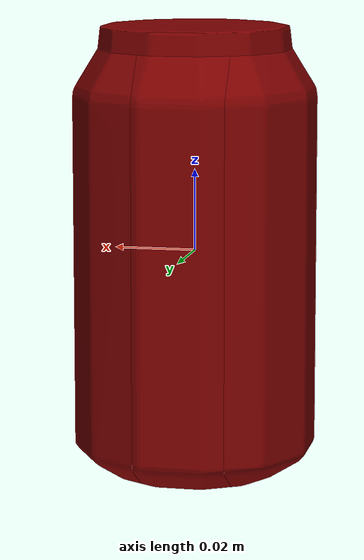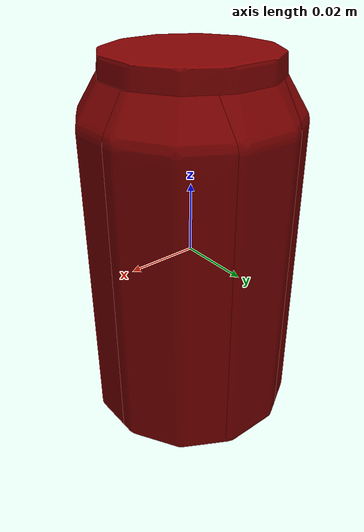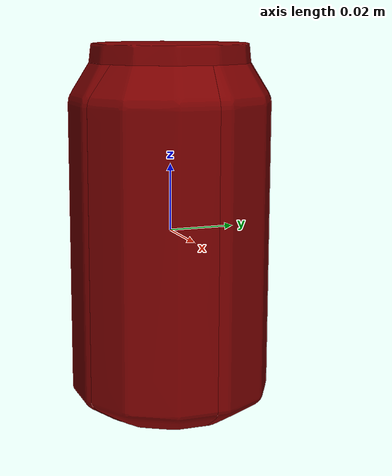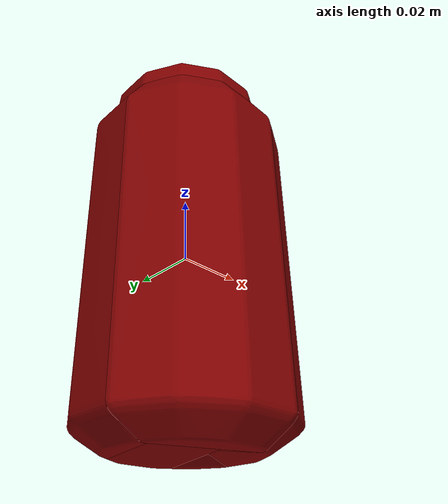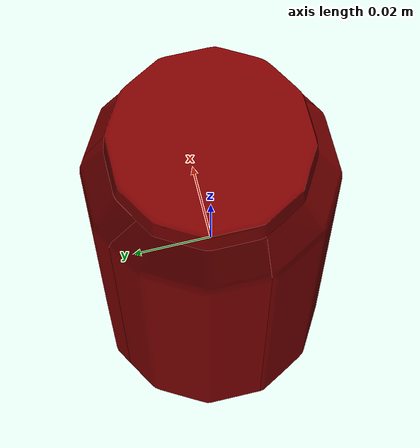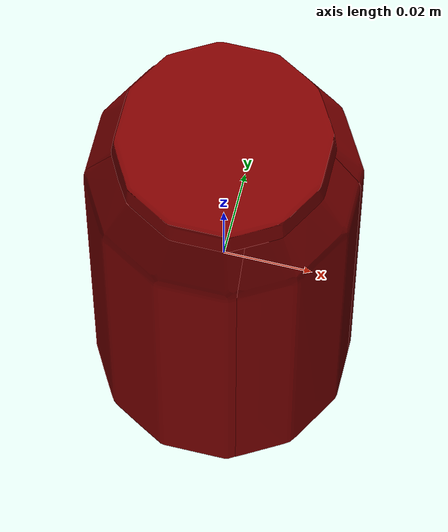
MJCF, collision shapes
<mujoco model="can_29">
  <asset>
    <mesh file="visual/model_normalized_0.obj" name="model_normalized_0_vis" scale="0.11 0.11 0.11" refquat="0.7071067811865472 0.0 0.0 -0.7071067811865476"/>
    <mesh file="visual/model_normalized_1.obj" name="model_normalized_1_vis" scale="0.11 0.11 0.11" refquat="0.7071067811865472 0.0 0.0 -0.7071067811865476"/>
    <mesh file="visual/model_normalized_2.obj" name="model_normalized_2_vis" scale="0.11 0.11 0.11" refquat="0.7071067811865472 0.0 0.0 -0.7071067811865476"/>
    <mesh file="visual/model_normalized_3.obj" name="model_normalized_3_vis" scale="0.11 0.11 0.11" refquat="0.7071067811865472 0.0 0.0 -0.7071067811865476"/>
    <mesh file="visual/model_normalized_4.obj" name="model_normalized_4_vis" scale="0.11 0.11 0.11" refquat="0.7071067811865472 0.0 0.0 -0.7071067811865476"/>
    <texture type="2d" name="image0" file="visual/image0.png"/>
    <texture type="2d" name="image2" file="visual/image2.png"/>
    <material name="858A-CL2" texture="image0" specular="0.5" shininess="0.15999998099999999"/>
    <material name="Material_3K" texture="image0" specular="0.5" shininess="0.15999998099999999"/>
    <material name="drops" texture="image0" specular="0.5" shininess="0.15999998099999999"/>
    <material name="metal.002" texture="image0" specular="0.5" shininess="0.25"/>
    <material name="metal_pepsi" texture="image2" specular="0.5" shininess="0.25"/>
    <mesh file="collision/collision_mesh_collision_0.obj" name="can_collision_mesh_0" scale="0.11 0.11 0.11" refquat="0.7071067811865472 0.0 0.0 -0.7071067811865476"/>
    <mesh file="collision/collision_mesh_collision_1.obj" name="can_collision_mesh_1" scale="0.11 0.11 0.11" refquat="0.7071067811865472 0.0 0.0 -0.7071067811865476"/>
    <mesh file="collision/collision_mesh_collision_2.obj" name="can_collision_mesh_2" scale="0.11 0.11 0.11" refquat="0.7071067811865472 0.0 0.0 -0.7071067811865476"/>
    <mesh file="collision/collision_mesh_collision_3.obj" name="can_collision_mesh_3" scale="0.11 0.11 0.11" refquat="0.7071067811865472 0.0 0.0 -0.7071067811865476"/>
    <mesh file="collision/collision_mesh_collision_4.obj" name="can_collision_mesh_4" scale="0.11 0.11 0.11" refquat="0.7071067811865472 0.0 0.0 -0.7071067811865476"/>
    <mesh file="collision/collision_mesh_collision_5.obj" name="can_collision_mesh_5" scale="0.11 0.11 0.11" refquat="0.7071067811865472 0.0 0.0 -0.7071067811865476"/>
  </asset>
  <default>
    <default class="region">
      <geom group="1" conaffinity="0" contype="0" rgba="0 1 0 0"/>
    </default>
    <default class="collision">
      <geom group="0" rgba="0.5 0 0 0.5" density="1000.0"/>
    </default>
  </default>
  <worldbody>
    <body>
      <body name="object">
        <geom solimp="0.998 0.998 0.001" solref="0.001 1" density="100" friction="0.95 0.3 0.1" type="mesh" mesh="model_normalized_0_vis" conaffinity="0" contype="0" group="1" material="metal_pepsi"/>
        <geom solimp="0.998 0.998 0.001" solref="0.001 1" density="100" friction="0.95 0.3 0.1" type="mesh" mesh="model_normalized_1_vis" conaffinity="0" contype="0" group="1" material="metal.002"/>
        <geom solimp="0.998 0.998 0.001" solref="0.001 1" density="100" friction="0.95 0.3 0.1" type="mesh" mesh="model_normalized_2_vis" conaffinity="0" contype="0" group="1" material="drops"/>
        <geom solimp="0.998 0.998 0.001" solref="0.001 1" density="100" friction="0.95 0.3 0.1" type="mesh" mesh="model_normalized_3_vis" conaffinity="0" contype="0" group="1" material="858A-CL2"/>
        <geom solimp="0.998 0.998 0.001" solref="0.001 1" density="100" friction="0.95 0.3 0.1" type="mesh" mesh="model_normalized_4_vis" conaffinity="0" contype="0" group="1" material="Material_3K"/>
        <geom class="region" name="reg_bbox" type="box" pos="-2.6838899999999944e-05 -7.5812000000000105e-06 -2.94189499999975e-05" size="0.0290639668 0.029044548499999996 0.05543297265"/>
        <geom mesh="can_collision_mesh_0" type="mesh" class="collision"/>
        <geom mesh="can_collision_mesh_1" type="mesh" class="collision"/>
        <geom mesh="can_collision_mesh_2" type="mesh" class="collision"/>
        <geom mesh="can_collision_mesh_3" type="mesh" class="collision"/>
        <geom mesh="can_collision_mesh_4" type="mesh" class="collision"/>
        <geom mesh="can_collision_mesh_5" type="mesh" class="collision"/>
      </body>
    </body>
  </worldbody>
</mujoco>
